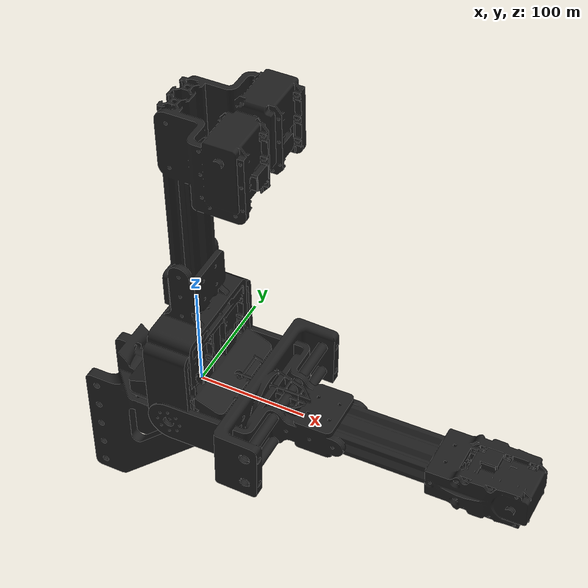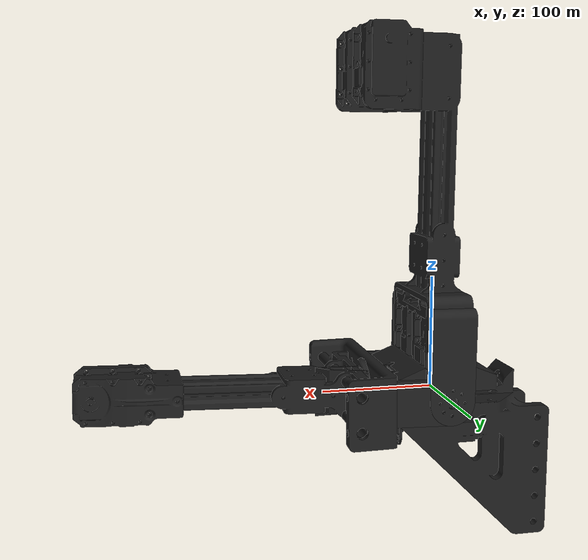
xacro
<?xml version="1.0"?>
<robot name="doris_arm"
    xmlns:xacro="http://ros.org/wiki/xacro">

    <xacro:arg name="robot_name" default = "doris_arm"/>
    <xacro:arg name="base_link_frame" default="base_link"/>
    <xacro:arg name="show_ar_tag" default="false"/>
    <xacro:arg name="show_gripper_bar" default="true"/>
    <xacro:arg name="show_gripper_fingers" default="true"/>
    <xacro:arg name="use_world_frame" default="false"/>
    <xacro:arg name="external_urdf_loc" default=""/>
    <xacro:arg name="load_gazebo_configs" default="false"/>

    <xacro:property name="urdf_loc" value="$(arg external_urdf_loc)"/>
    <xacro:property name="pi_offset" value="0.00001"/>

    <xacro:if value="$(arg load_gazebo_configs)">
        <xacro:include filename="$(find interbotix_xsarm_gazebo)/config/interbotix_texture.gazebo"/>
    </xacro:if>

    <material name="interbotix_black">
        <texture filename="package://interbotix_xsarm_descriptions/meshes/interbotix_black.png"/>
    </material>

    <xacro:if value="$(arg use_world_frame)">
        <link name="world"/>
        <joint name="fixed" type="fixed">
            <parent link="world"/>
            <child link="$(arg robot_name)/$(arg base_link_frame)"/>
        </joint>
    </xacro:if>

    <link name="$(arg robot_name)/$(arg base_link_frame)">
        <visual>
            <origin rpy="0 0 0" xyz="0 0 0"/>
            <geometry>
                <mesh filename="package://interbotix_xsarm_descriptions/meshes/doris_arm_meshes/doris_arm_1_base.stl" />
            </geometry>
            <material name="interbotix_black"/>
        </visual>
        <collision>
            <origin rpy="0 0 0" xyz="0 0 0"/>
            <geometry>
                <mesh filename="package://interbotix_xsarm_descriptions/meshes/doris_arm_meshes/doris_arm_1_base.stl" />
            </geometry>
        </collision>
        <inertial>
            <origin rpy="0 0 0" xyz="-0.0534774000 -0.0005625750 0.0205961000"/>
            <mass value="0.969034" />
            <inertia ixx="0.0060240000" iyy="0.0017000000" izz="0.0071620000" ixy="0.0000471300" ixz="0.0000038510" iyz="-0.0000841500" />
        </inertial>
    </link>

    <joint name="waist" type="revolute">
        <axis xyz="0 0 1"/>
        <limit effort="10" lower="${-pi + pi_offset}" upper="${pi - pi_offset}" velocity="${pi}"/>
        <origin rpy="0 0 0" xyz="0 0 0.023"/>
        <parent link="$(arg robot_name)/$(arg base_link_frame)"/>
        <child link="$(arg robot_name)/shoulder_link"/>
        <dynamics friction="0.1"/>
    </joint>

    <transmission name="trans_waist">
        <type>transmission_interface/SimpleTransmission</type>
        <joint name="waist">
            <hardwareInterface>hardware_interface/EffortJointInterface</hardwareInterface>
        </joint>
        <actuator name="waist_motor">
            <mechanicalReduction>1</mechanicalReduction>
        </actuator>
    </transmission>

    <link name="$(arg robot_name)/shoulder_link">
        <visual>
            <origin rpy="0 0 0" xyz="0 0 0"/>
            <geometry>
                <mesh filename="package://interbotix_xsarm_descriptions/meshes/doris_arm_meshes/doris_arm_2_shoulder.stl" />
            </geometry>
            <material name="interbotix_black"/>
        </visual>
        <collision>
            <origin rpy="0 0 0" xyz="0 0 0"/>
            <geometry>
                <mesh filename="package://interbotix_xsarm_descriptions/meshes/doris_arm_meshes/doris_arm_2_shoulder.stl" />
            </geometry>
        </collision>
        <inertial>
            <origin rpy="0 0 0" xyz="0.0002592330 -0.0000033552 0.0116129000"/>
            <mass value="0.798614" />
            <inertia ixx="0.0009388000" iyy="0.0011380000" izz="0.0012010000" ixy="-0.0000000010" ixz="-0.0000000191" iyz="0.0000059568" />
        </inertial>
    </link>

    <joint name="shoulder" type="revolute">
        <axis xyz="0 1 0"/>
        <limit effort="20" lower="${radians(-106)}" upper="${radians(120)}" velocity="${pi}"/>
        <origin rpy="0 0 0" xyz="0 0 0.05805"/>
        <parent link="$(arg robot_name)/shoulder_link"/>
        <child link="$(arg robot_name)/upper_arm_link"/>
        <dynamics friction="0.1"/>
    </joint>

    <transmission name="trans_shoulder">
        <type>transmission_interface/SimpleTransmission</type>
        <joint name="shoulder">
            <hardwareInterface>hardware_interface/EffortJointInterface</hardwareInterface>
        </joint>
        <actuator name="shoulder_motor">
            <mechanicalReduction>1</mechanicalReduction>
        </actuator>
    </transmission>

    <link name="$(arg robot_name)/upper_arm_link">
        <visual>
            <origin rpy="0 0 0" xyz="0 0 0"/>
            <geometry>
                <mesh filename="package://interbotix_xsarm_descriptions/meshes/doris_arm_meshes/doris_arm_3_upper_arm.stl" />
            </geometry>
            <material name="interbotix_black"/>
        </visual>
        <collision>
            <origin rpy="0 0 0" xyz="0 0 0"/>
            <geometry>
                <mesh filename="package://interbotix_xsarm_descriptions/meshes/doris_arm_meshes/doris_arm_3_upper_arm.stl" />
            </geometry>
        </collision>
        <inertial>
            <origin rpy="0 0 0" xyz="0.0206949000 0.0000000004 0.2264590000"/>
            <mass value="0.792592" />
            <inertia ixx="0.0089250000" iyy="0.0089370000" izz="0.0009357000" ixy="0.0000000000" ixz="0.0000000000" iyz="0.0012010000" />
        </inertial>
    </link>

    <joint name="elbow" type="revolute">
        <axis xyz="0 1 0"/>
        <limit effort="15" lower="${radians(-101)}" upper="${radians(92)}" velocity="${pi}"/>
        <origin rpy="0 0 0" xyz="0.05955 0 0.3"/>
        <parent link="$(arg robot_name)/upper_arm_link"/>
        <child link="$(arg robot_name)/forearm_link"/>
        <dynamics friction="0.1"/>
    </joint>

    <transmission name="trans_elbow">
        <type>transmission_interface/SimpleTransmission</type>
        <joint name="elbow">
            <hardwareInterface>hardware_interface/EffortJointInterface</hardwareInterface>
        </joint>
        <actuator name="elbow_motor">
            <mechanicalReduction>1</mechanicalReduction>
        </actuator>
    </transmission>

    <link name="$(arg robot_name)/forearm_link">
        <visual>
            <origin rpy="0 0 0" xyz="0 0 0"/>
            <geometry>
                <mesh filename="package://interbotix_xsarm_descriptions/meshes/doris_arm_meshes/doris_arm_4_forearm.stl" />
            </geometry>
            <material name="interbotix_black"/>
        </visual>
        <collision>
            <origin rpy="0 0 0" xyz="0 0 0"/>
            <geometry>
                <mesh filename="package://interbotix_xsarm_descriptions/meshes/doris_arm_meshes/doris_arm_4_forearm.stl" />
            </geometry>
        </collision>
        <inertial>
            <origin rpy="0 0 0" xyz="0.1812650000 -0.0002065037 0.0000000000"/>
            <mass value="0.544659" />
            <inertia ixx="0.0054470000" iyy="0.0002267000" izz="0.0055740000" ixy="-0.0000119800" ixz="0.0000000000" iyz="0.0000000000" />
        </inertial>
    </link>

    <joint name="wrist_angle" type="revolute">
        <axis xyz="0 1 0"/>
        <limit effort="5" lower="${radians(-107)}" upper="${radians(128)}" velocity="${pi}"/>
        <origin rpy="0 0 0" xyz="0.3 0 0.01"/>
        <parent link="$(arg robot_name)/forearm_link"/>
        <child link="$(arg robot_name)/wrist_link"/>
        <dynamics friction="0.1"/>
    </joint>

    <transmission name="trans_wrist_angle">
        <type>transmission_interface/SimpleTransmission</type>
        <joint name="wrist_angle">
            <hardwareInterface>hardware_interface/EffortJointInterface</hardwareInterface>
        </joint>
        <actuator name="wrist_angle_motor">
            <mechanicalReduction>1</mechanicalReduction>
        </actuator>
    </transmission>

    <link name="$(arg robot_name)/wrist_link">
        <visual>
            <origin rpy="0 0 ${pi}" xyz="0 0 0"/>
            <geometry>
                <mesh filename="package://interbotix_xsarm_descriptions/meshes/doris_arm_meshes/doris_arm_5_wrist.stl" />
            </geometry>
            <material name="interbotix_black"/>
        </visual>
        <collision>
            <origin rpy="0 0 ${pi}" xyz="0 0 0"/>
            <geometry>
                <mesh filename="package://interbotix_xsarm_descriptions/meshes/doris_arm_meshes/doris_arm_5_wrist.stl" />
            </geometry>
        </collision>
        <inertial>
            <origin rpy="0 0 ${pi/2}" xyz="0.0467430000 -0.0000076652 0.0105650000"/>
            <mass value="0.115395" />
            <inertia ixx="0.0000463100" iyy="0.0000451400" izz="0.0000527000" ixy="0.0000000195" ixz="0.0000000023" iyz="0.0000042002" />
        </inertial>
    </link>

    <joint name="wrist_rotate" type="revolute">
        <axis xyz="1 0 0"/>
        <limit effort="1" lower="${-pi + pi_offset}" upper="${pi - pi_offset}" velocity="${pi}"/>
        <origin rpy="0 0 0" xyz="0.069744 0 0"/>
        <parent link="$(arg robot_name)/wrist_link"/>
        <child link="$(arg robot_name)/gripper_link"/>
        <dynamics friction="0.1"/>
    </joint>

    <transmission name="trans_wrist_rotate">
        <type>transmission_interface/SimpleTransmission</type>
        <joint name="wrist_rotate">
            <hardwareInterface>hardware_interface/EffortJointInterface</hardwareInterface>
        </joint>
        <actuator name="wrist_rotate_motor">
            <mechanicalReduction>1</mechanicalReduction>
        </actuator>
    </transmission>

    <link name="$(arg robot_name)/gripper_link">
        <visual>
            <origin rpy="0 0 0" xyz="-0.02 0 0"/>
            <geometry>
                <mesh filename="package://interbotix_xsarm_descriptions/meshes/doris_arm_meshes/doris_arm_6_gripper.stl" />
            </geometry>
            <material name="interbotix_black"/>
        </visual>
        <collision>
            <origin rpy="0 0 0" xyz="-0.02 0 0"/>
            <geometry>
                <mesh filename="package://interbotix_xsarm_descriptions/meshes/doris_arm_meshes/doris_arm_6_gripper.stl" />
            </geometry>
        </collision>
        <inertial>
            <origin rpy="0 0 ${pi/2}" xyz="0.0230010000 0.0000000000 0.0115230000"/>
            <mass value="0.097666" />
            <inertia ixx="0.0000326800" iyy="0.0000243600" izz="0.0000211900" ixy="0.0000000000" ixz="0.0000000000" iyz="0.0000002785" />
        </inertial>
    </link>

    <joint name="ee_arm" type="fixed">
        <axis xyz="1 0 0"/>
        <origin rpy="0 0 0" xyz="0.042825 0 0"/>
        <parent link="$(arg robot_name)/gripper_link"/>
        <child link="$(arg robot_name)/ee_arm_link"/>
    </joint>

    <link name="$(arg robot_name)/ee_arm_link">
        <inertial>
            <mass value="0.001" />
            <inertia ixx="0.0001" iyy="0.0001" izz="0.0001" ixy="0" ixz="0" iyz="0" />
        </inertial>
    </link>

    <joint name="gripper" type="continuous">
        <axis xyz="1 0 0"/>
        <limit effort="1" velocity="${pi}"/>
        <origin rpy="0 0 0" xyz="0.005675 0 0"/>
        <parent link="$(arg robot_name)/ee_arm_link"/>
        <child link="$(arg robot_name)/gripper_prop_link"/>
        <dynamics friction="0.1"/>
    </joint>

    <transmission name="trans_gripper">
        <type>transmission_interface/SimpleTransmission</type>
        <joint name="gripper">
            <hardwareInterface>hardware_interface/EffortJointInterface</hardwareInterface>
        </joint>
        <actuator name="gripper_motor">
            <mechanicalReduction>1</mechanicalReduction>
        </actuator>
    </transmission>

    <link name="$(arg robot_name)/gripper_prop_link">
        <inertial>
            <origin rpy="0 0 ${pi/2}" xyz="0.0023780000 0.0000000285 0.0000000000"/>
            <mass value="0.008009" />
            <inertia ixx="0.0000020386" iyy="0.0000042979" izz="0.0000023796" ixy="0.0000000000" ixz="0.0000006559" iyz="0.0000000000" />
        </inertial>
    </link>

    <!-- If the AR tag is being used, then add the AR tag mount -->

    <xacro:if value="$(arg show_ar_tag)">

        <joint name="ar_tag" type="fixed">
            <axis xyz="0 0 0"/>
            <origin rpy="0 0 0" xyz="-0.017 0 0.04155"/>
            <parent link="$(arg robot_name)/ee_arm_link"/>
            <child link="$(arg robot_name)/ar_tag_link"/>
        </joint>

        <link name="$(arg robot_name)/ar_tag_link">
            <visual>
                <origin rpy="0 0 0" xyz="0 0 0"/>
                <geometry>
                    <mesh filename="package://interbotix_xsarm_descriptions/meshes/doris_arm_meshes/doris_arm_10_ar_tag.stl" />
                </geometry>
                <material name="interbotix_black"/>
            </visual>
            <collision>
                <origin rpy="0 0 0" xyz="0 0 0"/>
                <geometry>
                    <mesh filename="package://interbotix_xsarm_descriptions/meshes/doris_arm_meshes/doris_arm_10_ar_tag.stl" />
                </geometry>
            </collision>
            <inertial>
                <origin rpy="0 0 0" xyz="0 0 -0.00315"/>
                <mass value="0.016507"/>
                <inertia ixx="0.000003084" ixy="0" ixz="0" iyy="0.000003084" iyz="0" izz="0.000006059"/>
            </inertial>
        </link>

    </xacro:if>

    <!-- If the gripper bar is being used, then also add the gripper bar -->

    <xacro:if value="$(arg show_gripper_bar)">

        <joint name="gripper_bar" type="fixed">
            <axis xyz="1 0 0"/>
            <origin rpy="0 0 0" xyz="0 0 0"/>
            <parent link="$(arg robot_name)/ee_arm_link"/>
            <child link="$(arg robot_name)/gripper_bar_link"/>
        </joint>

        <link name="$(arg robot_name)/gripper_bar_link">
            <inertial>
                <origin rpy="0 0 ${pi/2}" xyz="0.0067940000 -0.0000004272 -0.0007760000"/>
                <mass value="0.150986" />
                <inertia ixx="0.0000789500" iyy="0.0003283000" izz="0.0003095000" ixy="-0.0000000012" ixz="0.0000001341" iyz="0.0000017465" />
            </inertial>
        </link>

        <joint name="ee_bar" type="fixed">
            <axis xyz="1 0 0"/>
            <origin rpy="0 0 0" xyz="0.025875 0 0"/>
            <parent link="$(arg robot_name)/gripper_bar_link"/>
            <child link="$(arg robot_name)/fingers_link"/>
        </joint>

        <link name="$(arg robot_name)/fingers_link">
            <inertial>
                <mass value="0.001" />
                <inertia ixx="0.0001" iyy="0.0001" izz="0.0001" ixy="0" ixz="0" iyz="0" />
            </inertial>
        </link>

        <!-- If the gripper fingers are being used, add those as well -->

        <xacro:if value="$(arg show_gripper_fingers)">

            <joint name="left_finger" type="prismatic">
                <axis xyz="0 1 0"/>
                <limit effort="2" lower="0.014" upper="0.06145" velocity="1"/>
                <origin rpy="0 0 0" xyz="0 0 0"/>
                <parent link="$(arg robot_name)/fingers_link"/>
                <child link="$(arg robot_name)/left_finger_link"/>
                <dynamics friction="0.1"/>
            </joint>

            <transmission name="trans_left_finger">
                <type>transmission_interface/SimpleTransmission</type>
                <joint name="left_finger">
                    <hardwareInterface>hardware_interface/EffortJointInterface</hardwareInterface>
                </joint>
                <actuator name="left_finger_motor">
                    <mechanicalReduction>1</mechanicalReduction>
                </actuator>
            </transmission>

            <link name="$(arg robot_name)/left_finger_link">
                <visual>
                    <origin rpy="${pi} 0 0" xyz="0 0 0"/>
                    <geometry>
                        <mesh filename="package://interbotix_xsarm_descriptions/meshes/doris_arm_meshes/doris_arm_9_gripper_finger.stl" />
                    </geometry>
                    <material name="interbotix_black"/>
                </visual>
                <collision>
                    <origin rpy="${pi} 0 0" xyz="0 0 0"/>
                    <geometry>
                        <mesh filename="package://interbotix_xsarm_descriptions/meshes/doris_arm_meshes/doris_arm_9_gripper_finger.stl" />
                    </geometry>
                </collision>
                <inertial>
                    <origin rpy="${pi} ${pi} ${pi/2}" xyz="0.0173440000 -0.0060692000 0.0000000000"/>
                    <mass value="0.034796" />
                    <inertia ixx="0.0000243300" iyy="0.0000125500" izz="0.0000141700" ixy="-0.0000024004" ixz="0.0000000000" iyz="0.0000000000" />
                </inertial>
            </link>

            <joint name="right_finger" type="prismatic">
                <axis xyz="0 1 0"/>
                <limit effort="2" lower="-0.06145" upper="-0.014" velocity="1"/>
                <origin rpy="0 0 0" xyz="0 0 0"/>
                <parent link="$(arg robot_name)/fingers_link"/>
                <child link="$(arg robot_name)/right_finger_link"/>
                <dynamics friction="0.1"/>
                <xacro:unless value="$(arg load_gazebo_configs)">
                    <mimic joint="left_finger" multiplier="-1" offset="0"/>
                </xacro:unless>
            </joint>

            <transmission name="trans_right_finger">
                <type>transmission_interface/SimpleTransmission</type>
                <joint name="right_finger">
                    <hardwareInterface>hardware_interface/EffortJointInterface</hardwareInterface>
                </joint>
                <actuator name="right_finger_motor">
                    <mechanicalReduction>1</mechanicalReduction>
                </actuator>
            </transmission>

            <link name="$(arg robot_name)/right_finger_link">
                <visual>
                    <origin rpy="0 0 0" xyz="0 0 0 "/>
                    <geometry>
                        <mesh filename="package://interbotix_xsarm_descriptions/meshes/doris_arm_meshes/doris_arm_9_gripper_finger.stl" />
                    </geometry>
                    <material name="interbotix_black"/>
                </visual>
                <collision>
                    <origin rpy="0 0 0" xyz="0 0 0 "/>
                    <geometry>
                        <mesh filename="package://interbotix_xsarm_descriptions/meshes/doris_arm_meshes/doris_arm_9_gripper_finger.stl" />
                    </geometry>
                </collision>
                <inertial>
                    <origin rpy="0 ${pi} ${pi/2}" xyz="0.0173440000 0.0060692000  0.0000000000"/>
                    <mass value="0.034796" />
                    <inertia ixx="0.0000243300" iyy="0.0000125500" izz="0.0000141700" ixy="0.0000024001" ixz="0.0000000000" iyz="0.0000000000" />
                </inertial>
            </link>

            <joint name="ee_gripper" type="fixed">
                <axis xyz="1 0 0"/>
                <origin rpy="0 0 0" xyz="0.0385 0 0"/>
                <parent link="$(arg robot_name)/fingers_link"/>
                <child link="$(arg robot_name)/ee_gripper_link"/>
            </joint>

            <link name="$(arg robot_name)/ee_gripper_link">
                <inertial>
                    <mass value="0.001" />
                    <inertia ixx="0.0001" iyy="0.0001" izz="0.0001" ixy="0" ixz="0" iyz="0" />
                </inertial>
            </link>

        </xacro:if>

    </xacro:if>

    <xacro:if value="${urdf_loc != ''}">
        <xacro:include filename="${urdf_loc}"/>
    </xacro:if>

</robot>
